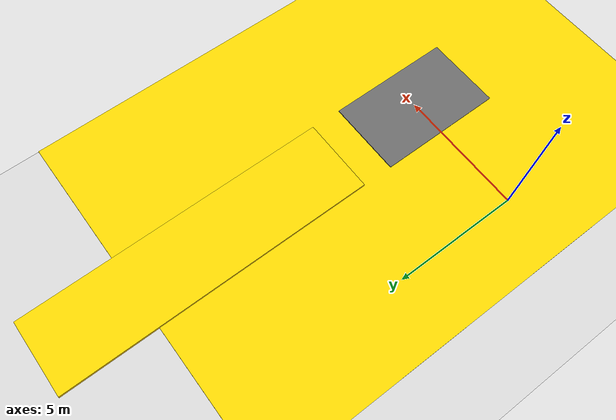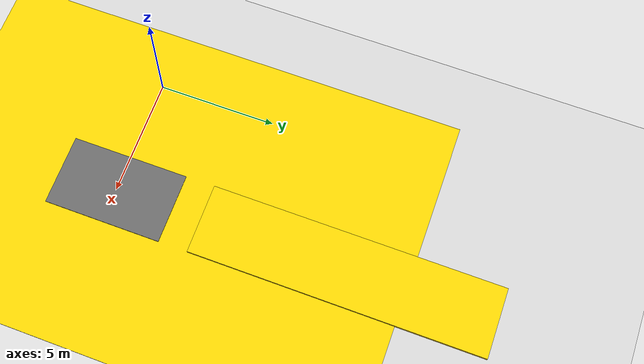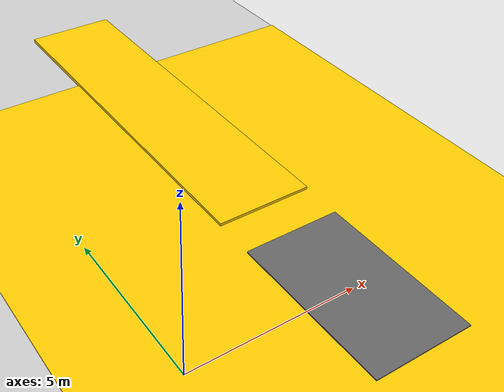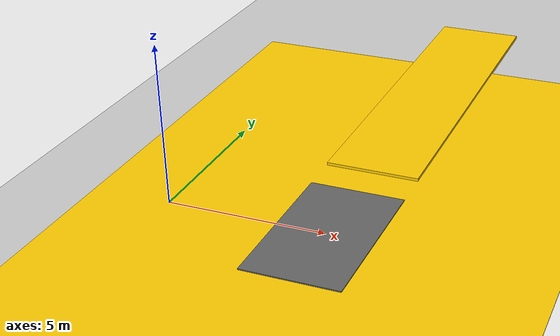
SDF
<?xml version="1.0" ?>
<sdf version="1.9">
    <world name="leg_test_bumps">

        <!-- Plugin for simulating physics -->
        <plugin
                filename="gz-sim-physics-system"
                name="gz::sim::systems::Physics">
        </plugin>

        <!-- Plugin for handling user commands -->
        <plugin
                filename="gz-sim-user-commands-system"
                name="gz::sim::systems::UserCommands">
        </plugin>

        <!-- Plugin for broadcasting scene updates -->
        <plugin
                filename="gz-sim-scene-broadcaster-system"
                name="gz::sim::systems::SceneBroadcaster">
        </plugin>

        <!-- Plugin for handling sensors like the LIDAR -->
        <plugin
                filename="gz-sim-sensors-system"
                name="gz::sim::systems::Sensors">
            <render_engine>ogre2</render_engine>
        </plugin>

        <!-- Plugin for IMU -->
        <plugin filename="gz-sim-imu-system"
                name="gz::sim::systems::Imu">
        </plugin>

        <!-- plugin for GPS  -->
        <plugin
                filename="gz-sim-navsat-system"
                name="gz::sim::systems::NavSat">
        </plugin>

        <light type="directional" name="sun">
            <cast_shadows>true</cast_shadows>
            <pose>0 0 10 0 0 0</pose>
            <diffuse>0.8 0.8 0.8 1</diffuse>
            <specular>0.2 0.2 0.2 1</specular>
            <direction>-0.5 0.1 -0.9</direction>
        </light>

        <model name="ground_plane">
            <static>true</static>
            <link name="link">
                <collision name="collision">
                    <geometry>
                        <plane>
                            <normal>0 0 1</normal>
                            <size>30 30</size>
                        </plane>
                    </geometry>
                </collision>
                <visual name="visual">
                    <geometry>
                        <plane>
                            <normal>0 0 1</normal>
                            <size>30 30</size>
                        </plane>
                    </geometry>
                    <material>
                        <ambient>0.8 0.8 0.8 1</ambient>
                        <diffuse>0.8 0.8 0.8 1</diffuse>
                        <specular>0.8 0.8 0.8 1</specular>
                    </material>
                </visual>
            </link>
        </model>

        <include>
            <uri>model://bump_003</uri>
            <name>bump_003</name>
            <pose>5 -10 0 0 0 1.570796</pose>
        </include>

        <include>
            <uri>model://bump_010</uri>
            <name>bump_010</name>
            <pose>5 0 0 0 0 1.570796</pose>
        </include>

        <include>
            <uri>model://bump_022</uri>
            <name>bump_022</name>
            <pose>5 10 0 0 0 1.570796</pose>
        </include>

    </world>
</sdf>

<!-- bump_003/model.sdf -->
<sdf version="1.9">
  <model name="bump_005">
    <static>true</static>
    <link name="link">
      <collision name="collision">
        <geometry>
          <box>
            <!-- ===== 여기 두 숫자만 수정하면 가로/세로 크기가 바뀝니다 ===== -->
            <!-- 순서: 가로(도로 폭) 세로(로봇 진행방향) 높이(0.03, "0.05 이하" 규격에서 -->
            <!-- 여유를 두어 더 낮게 설정 - 확실하게 통과되도록. 0.06 이상으로는 절대 올리지 마세요) -->
            <size>45 15 0.03</size>
          </box>
        </geometry>
      </collision>
      <visual name="visual">
        <geometry>
          <box>
            <!-- collision과 반드시 같은 숫자로! -->
            <size>45 15 0.03</size>
          </box>
        </geometry>
        <material>
          <!-- 다른 방지턱들과 통일된 노란색 -->
          <ambient>1 0.75 0 1</ambient>
          <diffuse>1 0.8 0 1</diffuse>
        </material>
      </visual>
    </link>
  </model>
</sdf>

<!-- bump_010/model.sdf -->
<sdf version="1.9">
  <model name="bump_010">
    <static>true</static>
    <link name="link">
      <collision name="collision">
        <geometry>
          <box>
            <!-- ===== 여기 두 숫자만 수정하면 가로/세로 크기가 바뀝니다 ===== -->
            <!-- 순서: 가로(진행방향과 수직, 도로 폭) 세로(로봇 진행방향) 높이(0.10 고정, 절대 수정 X) -->
            <size>5 3 0.10</size>
          </box>
        </geometry>
      </collision>
      <visual name="visual">
        <geometry>
          <box>
            <!-- collision과 반드시 같은 숫자로! (한 곳만 고치면 눈에 보이는 모양과 실제 충돌 영역이 어긋남) -->
            <size>5 3 0.10</size>
          </box>
        </geometry>
        <material>
          <ambient>0.35 0.35 0.35 1</ambient>
          <diffuse>0.4 0.4 0.4 1</diffuse>
        </material>
      </visual>
    </link>
  </model>
</sdf>

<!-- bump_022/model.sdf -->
<sdf version="1.9">
  <model name="bump_018">
    <static>true</static>
    <link name="link">
      <collision name="collision">
        <geometry>
          <box>
            <!-- ===== 여기 두 숫자만 수정하면 가로/세로 크기가 바뀝니다 ===== -->
            <!-- 순서: 가로(도로 폭) 세로(로봇 진행방향) 높이(0.22, "0.18 이상" 규격에서 -->
            <!-- 여유를 두어 더 높게 설정 - 확실하게 막히도록. 0.17 이하로는 절대 내리지 마세요) -->
            <size>12.5 3 0.22</size>
          </box>
        </geometry>
      </collision>
      <visual name="visual">
        <geometry>
          <box>
            <!-- collision과 반드시 같은 숫자로! -->
            <size>12.5 3 0.22</size>
          </box>
        </geometry>
        <material>
          <!-- 다른 방지턱들과 통일된 노란색 -->
          <ambient>1 0.75 0 1</ambient>
          <diffuse>1 0.8 0 1</diffuse>
        </material>
      </visual>
    </link>
  </model>
</sdf>
